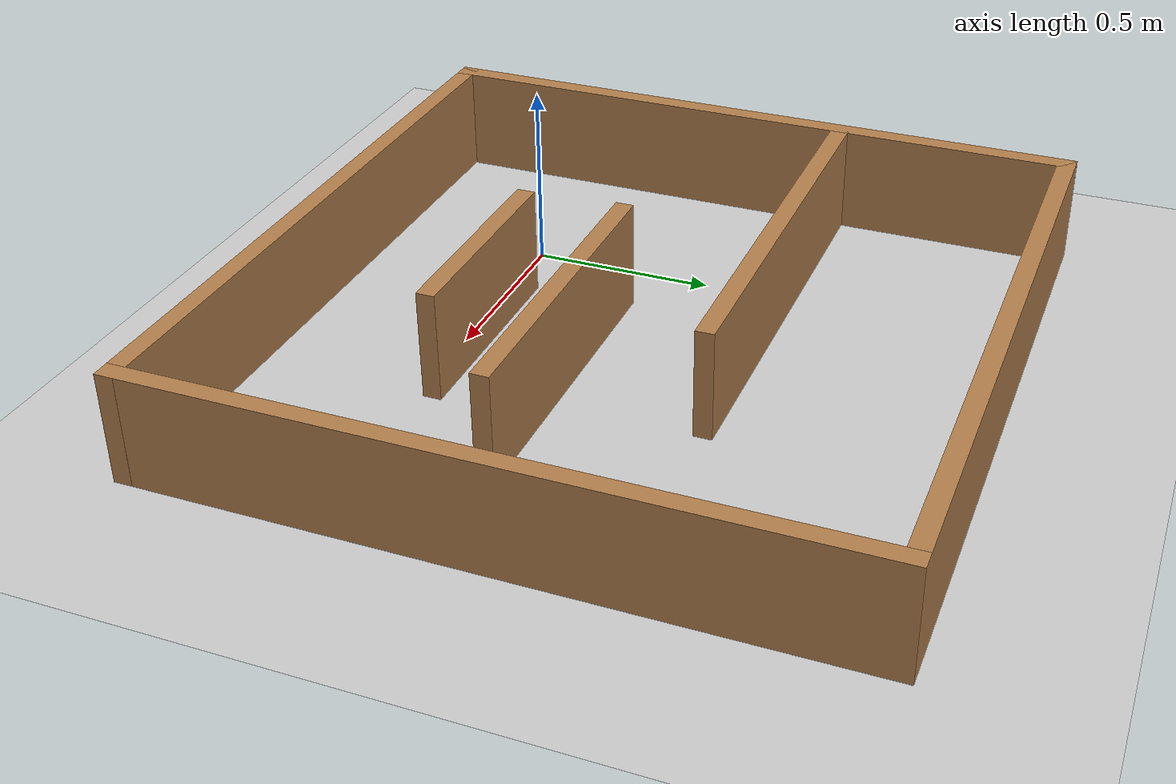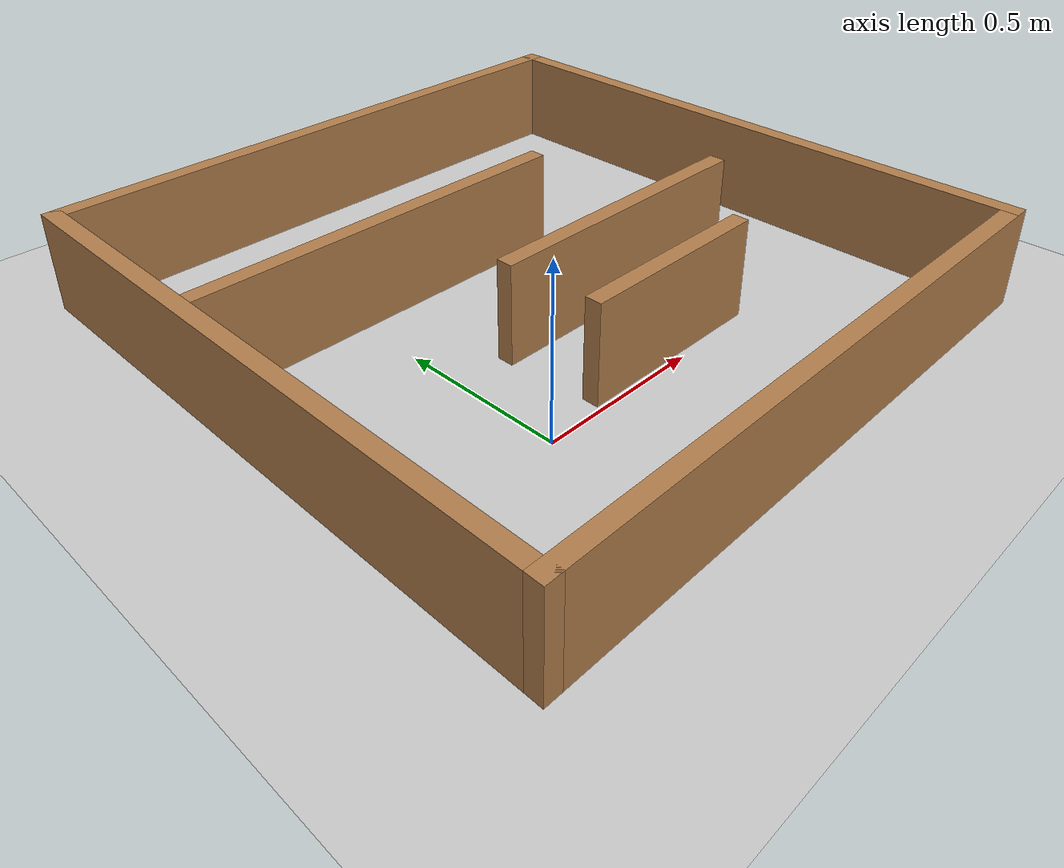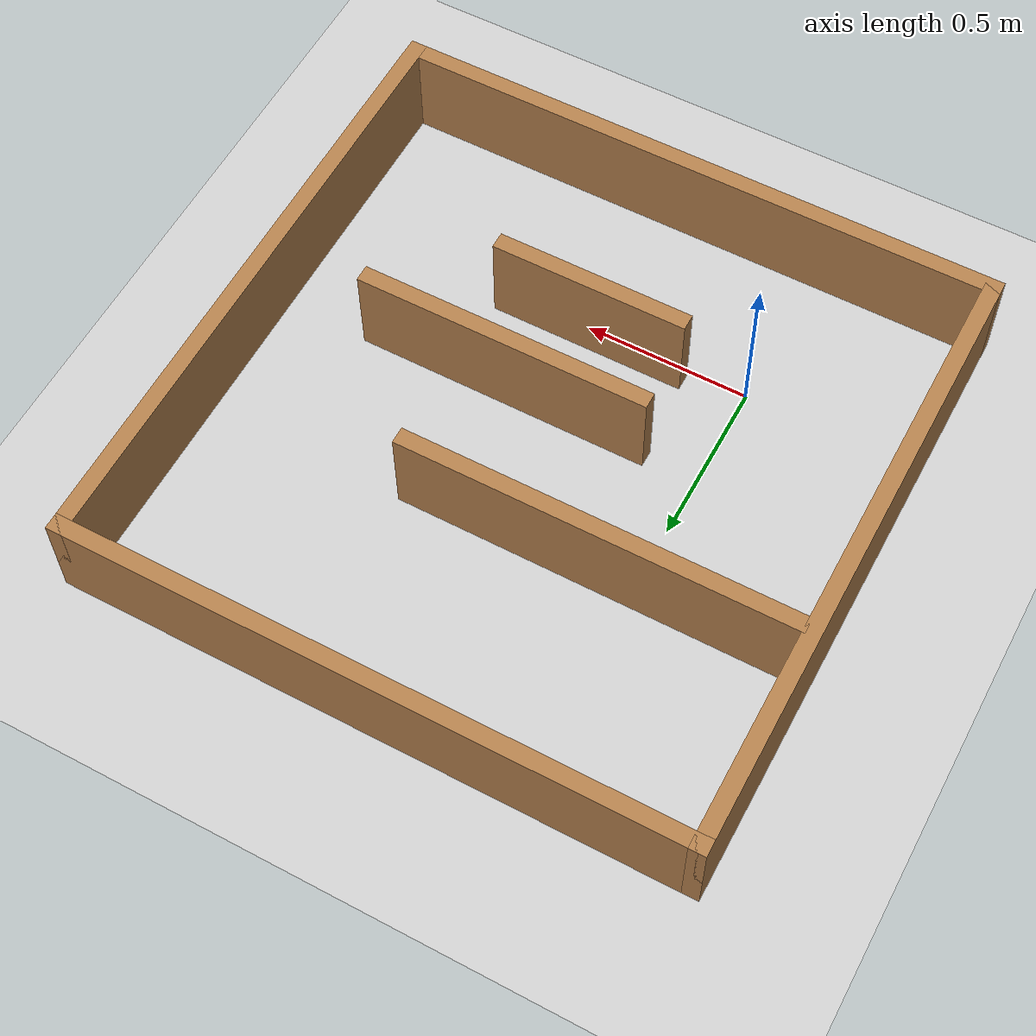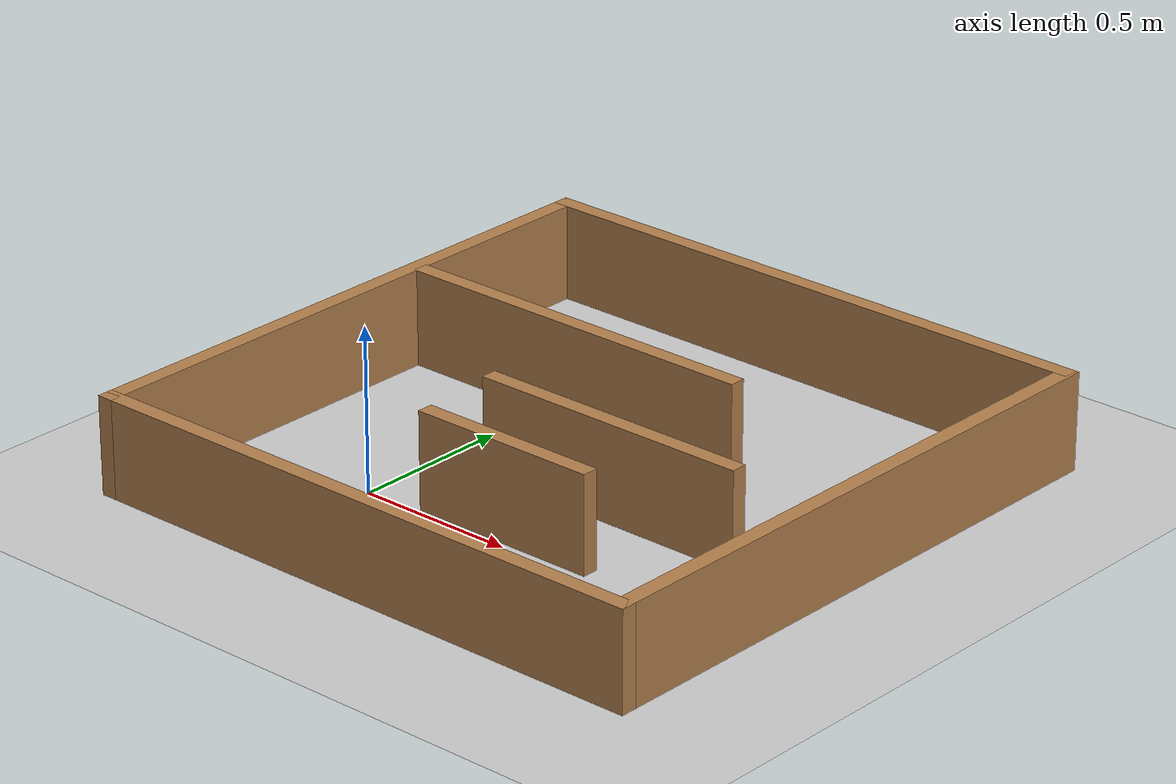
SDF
<sdf version="1.7">
 <world name="default">
  <light name="sun" type="directional">
   <pose>0 0 10 0 -0 0</pose>
   <diffuse>0.8 0.8 0.8 1</diffuse>
   <specular>0.2 0.2 0.2 1</specular>
   <attenuation>
    <range>1000</range>
    <constant>0.9</constant>
    <linear>0.01</linear>
    <quadratic>0.001</quadratic>
   </attenuation>
   <direction>-0.5 0.1 -0.9</direction>
   <spot><inner_angle>0</inner_angle><outer_angle>0</outer_angle><falloff>0</falloff></spot>
  </light>
  <model name="ground_plane">
   <static>1</static>
   <link name="link">
    <collision name="collision">
     <geometry><plane><normal>0 0 1</normal><size>100 100</size></plane></geometry>
     <surface>
      <contact><collide_bitmask>65535</collide_bitmask></contact>
      <friction><ode><mu>100</mu><mu2>50</mu2></ode></friction>
     </surface>
    </collision>
    <visual name="visual">
     <cast_shadows>0</cast_shadows>
     <geometry><plane><normal>0 0 1</normal><size>100 100</size></plane></geometry>
     <material>
      <script><uri>file://media/materials/scripts/gazebo.material</uri><name>Gazebo/Grey</name></script>
     </material>
    </visual>
   </link>
  </model>
  <gravity>0 0 -9.8</gravity>
  <magnetic_field>6e-06 2.3e-05 -4.2e-05</magnetic_field>
  <atmosphere type="adiabatic"/>
  <physics type="ode">
   <max_step_size>0.001</max_step_size>
   <real_time_factor>1</real_time_factor>
   <real_time_update_rate>1000</real_time_update_rate>
  </physics>
  <scene><ambient>0.4 0.4 0.4 1</ambient><background>0.7 0.7 0.7 1</background><shadows>1</shadows></scene>
  <audio><device>default</device></audio>
  <spherical_coordinates>
   <surface_model>EARTH_WGS84</surface_model>
   <latitude_deg>0</latitude_deg>
   <longitude_deg>0</longitude_deg>
   <elevation>0</elevation>
   <heading_deg>0</heading_deg>
  </spherical_coordinates>
  <model name="square2m">
   <pose>0.494101 1 0 0 -0 0</pose>
   <link name="Wall_0">
    <collision name="Wall_0_Collision">
     <geometry><box><size>1.9 0.05 0.3</size></box></geometry>
     <pose>0 0 0.15 0 -0 0</pose>
    </collision>
    <visual name="Wall_0_Visual">
     <pose>0 0 0.15 0 -0 0</pose>
     <geometry><box><size>1.9 0.05 0.3</size></box></geometry>
     <material>
      <script><uri>file://media/materials/scripts/gazebo.material</uri><name>Gazebo/Wood</name></script>
      <ambient>1 1 1 1</ambient>
     </material>
     <meta><layer>0</layer></meta>
    </visual>
    <pose>-0.0825 0.3825 0 0 -0 0</pose>
   </link>
   <link name="Wall_1">
    <collision name="Wall_1_Collision">
     <geometry><box><size>1.9 0.05 0.3</size></box></geometry>
     <pose>0 0 0.15 0 -0 0</pose>
    </collision>
    <visual name="Wall_1_Visual">
     <pose>0 0 0.15 0 -0 0</pose>
     <geometry><box><size>1.9 0.05 0.3</size></box></geometry>
     <material>
      <script><uri>file://media/materials/scripts/gazebo.material</uri><name>Gazebo/Wood</name></script>
      <ambient>1 1 1 1</ambient>
     </material>
     <meta><layer>0</layer></meta>
    </visual>
    <pose>0.8425 -0.5425 0 0 -0 -1.5708</pose>
   </link>
   <link name="Wall_2">
    <collision name="Wall_2_Collision">
     <geometry><box><size>1.9 0.05 0.3</size></box></geometry>
     <pose>0 0 0.15 0 -0 0</pose>
    </collision>
    <visual name="Wall_2_Visual">
     <pose>0 0 0.15 0 -0 0</pose>
     <geometry><box><size>1.9 0.05 0.3</size></box></geometry>
     <material>
      <script><uri>file://media/materials/scripts/gazebo.material</uri><name>Gazebo/Wood</name></script>
      <ambient>1 1 1 1</ambient>
     </material>
     <meta><layer>0</layer></meta>
    </visual>
    <pose>-0.0825 -1.4675 0 0 -0 3.14159</pose>
   </link>
   <link name="Wall_3">
    <collision name="Wall_3_Collision">
     <geometry><box><size>1.9 0.05 0.3</size></box></geometry>
     <pose>0 0 0.15 0 -0 0</pose>
    </collision>
    <visual name="Wall_3_Visual">
     <pose>0 0 0.15 0 -0 0</pose>
     <geometry><box><size>1.9 0.05 0.3</size></box></geometry>
     <material>
      <script><uri>file://media/materials/scripts/gazebo.material</uri><name>Gazebo/Wood</name></script>
      <ambient>1 1 1 1</ambient>
     </material>
     <meta><layer>0</layer></meta>
    </visual>
    <pose>-1.0075 -0.5425 0 0 -0 1.5708</pose>
   </link>
   <static>1</static>
  </model>
  <model name="wall120cm">
   <pose>0.102331 0.73273 0 0 -0 0</pose>
   <link name="Wall_11">
    <collision name="Wall_11_Collision">
     <geometry><box><size>1.2 0.05 0.3</size></box></geometry>
     <pose>0 0 0.15 0 -0 0</pose>
    </collision>
    <visual name="Wall_11_Visual">
     <pose>0 0 0.15 0 -0 0</pose>
     <geometry><box><size>1.2 0.05 0.3</size></box></geometry>
     <material>
      <script><uri>file://media/materials/scripts/gazebo.material</uri><name>Gazebo/Wood</name></script>
      <ambient>1 1 1 1</ambient>
     </material>
     <meta><layer>0</layer></meta>
    </visual>
   </link>
   <static>1</static>
  </model>
  <model name="wall60cm">
   <pose>0.479277 0.040838 0 0 -0 0</pose>
   <link name="Wall_4">
    <collision name="Wall_4_Collision">
     <geometry><box><size>0.6 0.05 0.3</size></box></geometry>
     <pose>0 0 0.15 0 -0 0</pose>
    </collision>
    <visual name="Wall_4_Visual">
     <pose>0 0 0.15 0 -0 0</pose>
     <geometry><box><size>0.6 0.05 0.3</size></box></geometry>
     <material>
      <script><uri>file://media/materials/scripts/gazebo.material</uri><name>Gazebo/Wood</name></script>
      <ambient>1 1 1 1</ambient>
     </material>
     <meta><layer>0</layer></meta>
    </visual>
   </link>
   <static>1</static>
  </model>
  <model name="wall90cm">
   <pose>0.606586 0.318821 0 0 -0 0</pose>
   <link name="Wall_6">
    <collision name="Wall_6_Collision">
     <geometry><box><size>0.9 0.05 0.3</size></box></geometry>
     <pose>0 0 0.15 0 -0 0</pose>
    </collision>
    <visual name="Wall_6_Visual">
     <pose>0 0 0.15 0 -0 0</pose>
     <geometry><box><size>0.9 0.05 0.3</size></box></geometry>
     <material>
      <script><uri>file://media/materials/scripts/gazebo.material</uri><name>Gazebo/Wood</name></script>
      <ambient>1 1 1 1</ambient>
     </material>
     <meta><layer>0</layer></meta>
    </visual>
   </link>
   <static>1</static>
  </model>
 </world>
</sdf>
